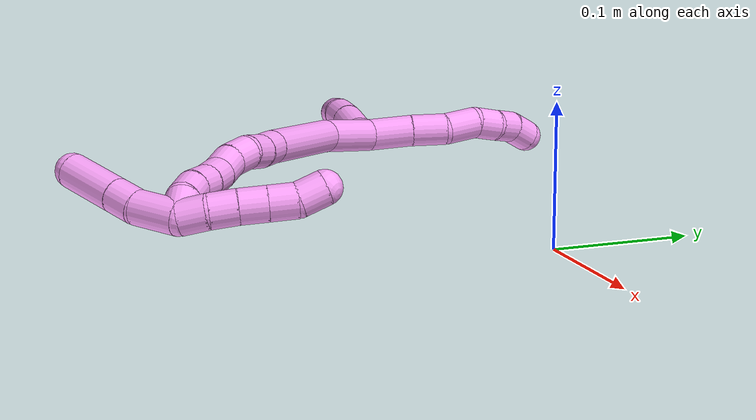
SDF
<sdf version="1.7">
 <world name="default">
  <model name="4">
   <static>0</static>
   <link name="4">
    <collision name="collision-cylinder-e_1_2_8">
     <pose>-0.010838 0.007342 -0.011651 -2.57931 -0.666739 1.75139</pose>
     <geometry><cylinder><radius>0.0125</radius><length>0.03505</length></cylinder></geometry>
     <surface>
      <friction><ode><mu>1.16</mu><mu2>1.16</mu2><slip1>0</slip1><slip2>0</slip2></ode></friction>
      <contact><ode><kp>1e+06</kp><kd>1</kd><max_vel>0</max_vel><min_depth>0.001</min_depth></ode></contact>
     </surface>
    </collision>
    <visual name="visual-cylinder-e_1_2_8">
     <pose>-0.010838 0.007342 -0.011651 -2.57931 -0.666739 1.75139</pose>
     <geometry><cylinder><radius>0.0125</radius><length>0.03505</length></cylinder></geometry>
     <material><ambient>1 0.65098 0.996078 1</ambient></material>
    </visual>
    <collision name="collision-cylinder-e_2_8_9">
     <pose>-0.030508 0.01973 -0.032811 -2.65366 -0.68711 1.92576</pose>
     <geometry><cylinder><radius>0.0125</radius><length>0.027848</length></cylinder></geometry>
     <surface>
      <friction><ode><mu>1.16</mu><mu2>1.16</mu2><slip1>0</slip1><slip2>0</slip2></ode></friction>
      <contact><ode><kp>1e+06</kp><kd>1</kd><max_vel>0</max_vel><min_depth>0.001</min_depth></ode></contact>
     </surface>
    </collision>
    <visual name="visual-cylinder-e_2_8_9">
     <pose>-0.030508 0.01973 -0.032811 -2.65366 -0.68711 1.92576</pose>
     <geometry><cylinder><radius>0.0125</radius><length>0.027848</length></cylinder></geometry>
     <material><ambient>1 0.65098 0.996078 1</ambient></material>
    </visual>
    <collision name="collision-cylinder-e_3_9_10">
     <pose>-0.049794 0.030886 -0.04799 -2.31895 -0.897705 1.66973</pose>
     <geometry><cylinder><radius>0.0125</radius><length>0.026741</length></cylinder></geometry>
     <surface>
      <friction><ode><mu>1.16</mu><mu2>1.16</mu2><slip1>0</slip1><slip2>0</slip2></ode></friction>
      <contact><ode><kp>1e+06</kp><kd>1</kd><max_vel>0</max_vel><min_depth>0.001</min_depth></ode></contact>
     </surface>
    </collision>
    <visual name="visual-cylinder-e_3_9_10">
     <pose>-0.049794 0.030886 -0.04799 -2.31895 -0.897705 1.66973</pose>
     <geometry><cylinder><radius>0.0125</radius><length>0.026741</length></cylinder></geometry>
     <material><ambient>1 0.65098 0.996078 1</ambient></material>
    </visual>
    <collision name="collision-cylinder-e_4_10_11">
     <pose>-0.069284 0.038405 -0.057836 -2.81602 -1.11696 2.62751</pose>
     <geometry><cylinder><radius>0.0125</radius><length>0.020107</length></cylinder></geometry>
     <surface>
      <friction><ode><mu>1.16</mu><mu2>1.16</mu2><slip1>0</slip1><slip2>0</slip2></ode></friction>
      <contact><ode><kp>1e+06</kp><kd>1</kd><max_vel>0</max_vel><min_depth>0.001</min_depth></ode></contact>
     </surface>
    </collision>
    <visual name="visual-cylinder-e_4_10_11">
     <pose>-0.069284 0.038405 -0.057836 -2.81602 -1.11696 2.62751</pose>
     <geometry><cylinder><radius>0.0125</radius><length>0.020107</length></cylinder></geometry>
     <material><ambient>1 0.65098 0.996078 1</ambient></material>
    </visual>
    <collision name="collision-cylinder-e_5_11_12">
     <pose>-0.088154 0.040927 -0.063823 -2.59086 -1.35801 2.46805</pose>
     <geometry><cylinder><radius>0.0125</radius><length>0.020123</length></cylinder></geometry>
     <surface>
      <friction><ode><mu>1.16</mu><mu2>1.16</mu2><slip1>0</slip1><slip2>0</slip2></ode></friction>
      <contact><ode><kp>1e+06</kp><kd>1</kd><max_vel>0</max_vel><min_depth>0.001</min_depth></ode></contact>
     </surface>
    </collision>
    <visual name="visual-cylinder-e_5_11_12">
     <pose>-0.088154 0.040927 -0.063823 -2.59086 -1.35801 2.46805</pose>
     <geometry><cylinder><radius>0.0125</radius><length>0.020123</length></cylinder></geometry>
     <material><ambient>1 0.65098 0.996078 1</ambient></material>
    </visual>
    <collision name="collision-cylinder-e_6_12_6">
     <pose>-0.107404 0.040379 -0.068784 2.65663 -1.20921 -2.45403</pose>
     <geometry><cylinder><radius>0.0125</radius><length>0.020132</length></cylinder></geometry>
     <surface>
      <friction><ode><mu>1.16</mu><mu2>1.16</mu2><slip1>0</slip1><slip2>0</slip2></ode></friction>
      <contact><ode><kp>1e+06</kp><kd>1</kd><max_vel>0</max_vel><min_depth>0.001</min_depth></ode></contact>
     </surface>
    </collision>
    <visual name="visual-cylinder-e_6_12_6">
     <pose>-0.107404 0.040379 -0.068784 2.65663 -1.20921 -2.45403</pose>
     <geometry><cylinder><radius>0.0125</radius><length>0.020132</length></cylinder></geometry>
     <material><ambient>1 0.65098 0.996078 1</ambient></material>
    </visual>
    <collision name="collision-cylinder-e_1_2_13">
     <pose>-0.00867 -0.001653 0.010082 0.162487 -0.703714 -0.059768</pose>
     <geometry><cylinder><radius>0.0125</radius><length>0.026799</length></cylinder></geometry>
     <surface>
      <friction><ode><mu>1.16</mu><mu2>1.16</mu2><slip1>0</slip1><slip2>0</slip2></ode></friction>
      <contact><ode><kp>1e+06</kp><kd>1</kd><max_vel>0</max_vel><min_depth>0.001</min_depth></ode></contact>
     </surface>
    </collision>
    <visual name="visual-cylinder-e_1_2_13">
     <pose>-0.00867 -0.001653 0.010082 0.162487 -0.703714 -0.059768</pose>
     <geometry><cylinder><radius>0.0125</radius><length>0.026799</length></cylinder></geometry>
     <material><ambient>1 0.65098 0.996078 1</ambient></material>
    </visual>
    <collision name="collision-cylinder-e_2_13_14">
     <pose>-0.025828 -0.000994 0.032774 -0.181308 -0.58479 0.054714</pose>
     <geometry><cylinder><radius>0.0125</radius><length>0.03075</length></cylinder></geometry>
     <surface>
      <friction><ode><mu>1.16</mu><mu2>1.16</mu2><slip1>0</slip1><slip2>0</slip2></ode></friction>
      <contact><ode><kp>1e+06</kp><kd>1</kd><max_vel>0</max_vel><min_depth>0.001</min_depth></ode></contact>
     </surface>
    </collision>
    <visual name="visual-cylinder-e_2_13_14">
     <pose>-0.025828 -0.000994 0.032774 -0.181308 -0.58479 0.054714</pose>
     <geometry><cylinder><radius>0.0125</radius><length>0.03075</length></cylinder></geometry>
     <material><ambient>1 0.65098 0.996078 1</ambient></material>
    </visual>
    <collision name="collision-cylinder-e_3_14_15">
     <pose>-0.039938 0.001867 0.053976 -0.06384 -0.578509 0.019005</pose>
     <geometry><cylinder><radius>0.0125</radius><length>0.020566</length></cylinder></geometry>
     <surface>
      <friction><ode><mu>1.16</mu><mu2>1.16</mu2><slip1>0</slip1><slip2>0</slip2></ode></friction>
      <contact><ode><kp>1e+06</kp><kd>1</kd><max_vel>0</max_vel><min_depth>0.001</min_depth></ode></contact>
     </surface>
    </collision>
    <visual name="visual-cylinder-e_3_14_15">
     <pose>-0.039938 0.001867 0.053976 -0.06384 -0.578509 0.019005</pose>
     <geometry><cylinder><radius>0.0125</radius><length>0.020566</length></cylinder></geometry>
     <material><ambient>1 0.65098 0.996078 1</ambient></material>
    </visual>
    <collision name="collision-cylinder-e_4_15_5">
     <pose>-0.053697 0.001203 0.069784 0.166619 -0.838371 -0.074383</pose>
     <geometry><cylinder><radius>0.0125</radius><length>0.021885</length></cylinder></geometry>
     <surface>
      <friction><ode><mu>1.16</mu><mu2>1.16</mu2><slip1>0</slip1><slip2>0</slip2></ode></friction>
      <contact><ode><kp>1e+06</kp><kd>1</kd><max_vel>0</max_vel><min_depth>0.001</min_depth></ode></contact>
     </surface>
    </collision>
    <visual name="visual-cylinder-e_4_15_5">
     <pose>-0.053697 0.001203 0.069784 0.166619 -0.838371 -0.074383</pose>
     <geometry><cylinder><radius>0.0125</radius><length>0.021885</length></cylinder></geometry>
     <material><ambient>1 0.65098 0.996078 1</ambient></material>
    </visual>
    <collision name="collision-cylinder-e_1_2_16">
     <pose>0.02594 -0.004186 0.002189 1.08893 1.39064 0.935585</pose>
     <geometry><cylinder><radius>0.0125</radius><length>0.052734</length></cylinder></geometry>
     <surface>
      <friction><ode><mu>1.16</mu><mu2>1.16</mu2><slip1>0</slip1><slip2>0</slip2></ode></friction>
      <contact><ode><kp>1e+06</kp><kd>1</kd><max_vel>0</max_vel><min_depth>0.001</min_depth></ode></contact>
     </surface>
    </collision>
    <visual name="visual-cylinder-e_1_2_16">
     <pose>0.02594 -0.004186 0.002189 1.08893 1.39064 0.935585</pose>
     <geometry><cylinder><radius>0.0125</radius><length>0.052734</length></cylinder></geometry>
     <material><ambient>1 0.65098 0.996078 1</ambient></material>
    </visual>
    <collision name="collision-cylinder-e_2_16_17">
     <pose>0.093291 -0.015139 -0.002276 2.34792 1.34552 2.17318</pose>
     <geometry><cylinder><radius>0.0125</radius><length>0.084969</length></cylinder></geometry>
     <surface>
      <friction><ode><mu>1.16</mu><mu2>1.16</mu2><slip1>0</slip1><slip2>0</slip2></ode></friction>
      <contact><ode><kp>1e+06</kp><kd>1</kd><max_vel>0</max_vel><min_depth>0.001</min_depth></ode></contact>
     </surface>
    </collision>
    <visual name="visual-cylinder-e_2_16_17">
     <pose>0.093291 -0.015139 -0.002276 2.34792 1.34552 2.17318</pose>
     <geometry><cylinder><radius>0.0125</radius><length>0.084969</length></cylinder></geometry>
     <material><ambient>1 0.65098 0.996078 1</ambient></material>
    </visual>
    <collision name="collision-cylinder-e_3_17_18">
     <pose>0.144867 -0.023654 -0.011824 2.59776 1.24958 2.40374</pose>
     <geometry><cylinder><radius>0.0125</radius><length>0.021426</length></cylinder></geometry>
     <surface>
      <friction><ode><mu>1.16</mu><mu2>1.16</mu2><slip1>0</slip1><slip2>0</slip2></ode></friction>
      <contact><ode><kp>1e+06</kp><kd>1</kd><max_vel>0</max_vel><min_depth>0.001</min_depth></ode></contact>
     </surface>
    </collision>
    <visual name="visual-cylinder-e_3_17_18">
     <pose>0.144867 -0.023654 -0.011824 2.59776 1.24958 2.40374</pose>
     <geometry><cylinder><radius>0.0125</radius><length>0.021426</length></cylinder></geometry>
     <material><ambient>1 0.65098 0.996078 1</ambient></material>
    </visual>
    <collision name="collision-cylinder-e_4_18_19">
     <pose>0.165274 -0.026249 -0.016524 2.70383 1.37858 2.61433</pose>
     <geometry><cylinder><radius>0.0125</radius><length>0.020869</length></cylinder></geometry>
     <surface>
      <friction><ode><mu>1.16</mu><mu2>1.16</mu2><slip1>0</slip1><slip2>0</slip2></ode></friction>
      <contact><ode><kp>1e+06</kp><kd>1</kd><max_vel>0</max_vel><min_depth>0.001</min_depth></ode></contact>
     </surface>
    </collision>
    <visual name="visual-cylinder-e_4_18_19">
     <pose>0.165274 -0.026249 -0.016524 2.70383 1.37858 2.61433</pose>
     <geometry><cylinder><radius>0.0125</radius><length>0.020869</length></cylinder></geometry>
     <material><ambient>1 0.65098 0.996078 1</ambient></material>
    </visual>
    <collision name="collision-cylinder-e_5_19_20">
     <pose>0.184645 -0.031124 -0.018996 1.73475 1.15013 1.30503</pose>
     <geometry><cylinder><radius>0.0125</radius><length>0.020001</length></cylinder></geometry>
     <surface>
      <friction><ode><mu>1.16</mu><mu2>1.16</mu2><slip1>0</slip1><slip2>0</slip2></ode></friction>
      <contact><ode><kp>1e+06</kp><kd>1</kd><max_vel>0</max_vel><min_depth>0.001</min_depth></ode></contact>
     </surface>
    </collision>
    <visual name="visual-cylinder-e_5_19_20">
     <pose>0.184645 -0.031124 -0.018996 1.73475 1.15013 1.30503</pose>
     <geometry><cylinder><radius>0.0125</radius><length>0.020001</length></cylinder></geometry>
     <material><ambient>1 0.65098 0.996078 1</ambient></material>
    </visual>
    <collision name="collision-cylinder-e_6_20_21">
     <pose>0.202081 -0.039593 -0.023023 2.21862 0.980256 1.64109</pose>
     <geometry><cylinder><radius>0.0125</radius><length>0.020003</length></cylinder></geometry>
     <surface>
      <friction><ode><mu>1.16</mu><mu2>1.16</mu2><slip1>0</slip1><slip2>0</slip2></ode></friction>
      <contact><ode><kp>1e+06</kp><kd>1</kd><max_vel>0</max_vel><min_depth>0.001</min_depth></ode></contact>
     </surface>
    </collision>
    <visual name="visual-cylinder-e_6_20_21">
     <pose>0.202081 -0.039593 -0.023023 2.21862 0.980256 1.64109</pose>
     <geometry><cylinder><radius>0.0125</radius><length>0.020003</length></cylinder></geometry>
     <material><ambient>1 0.65098 0.996078 1</ambient></material>
    </visual>
    <collision name="collision-cylinder-e_7_21_22">
     <pose>0.219502 -0.046773 -0.029455 2.4133 1.14662 2.07505</pose>
     <geometry><cylinder><radius>0.0125</radius><length>0.02</length></cylinder></geometry>
     <surface>
      <friction><ode><mu>1.16</mu><mu2>1.16</mu2><slip1>0</slip1><slip2>0</slip2></ode></friction>
      <contact><ode><kp>1e+06</kp><kd>1</kd><max_vel>0</max_vel><min_depth>0.001</min_depth></ode></contact>
     </surface>
    </collision>
    <visual name="visual-cylinder-e_7_21_22">
     <pose>0.219502 -0.046773 -0.029455 2.4133 1.14662 2.07505</pose>
     <geometry><cylinder><radius>0.0125</radius><length>0.02</length></cylinder></geometry>
     <material><ambient>1 0.65098 0.996078 1</ambient></material>
    </visual>
    <collision name="collision-cylinder-e_8_22_23">
     <pose>0.238124 -0.051629 -0.034788 2.38922 1.25591 2.14501</pose>
     <geometry><cylinder><radius>0.0125</radius><length>0.02</length></cylinder></geometry>
     <surface>
      <friction><ode><mu>1.16</mu><mu2>1.16</mu2><slip1>0</slip1><slip2>0</slip2></ode></friction>
      <contact><ode><kp>1e+06</kp><kd>1</kd><max_vel>0</max_vel><min_depth>0.001</min_depth></ode></contact>
     </surface>
    </collision>
    <visual name="visual-cylinder-e_8_22_23">
     <pose>0.238124 -0.051629 -0.034788 2.38922 1.25591 2.14501</pose>
     <geometry><cylinder><radius>0.0125</radius><length>0.02</length></cylinder></geometry>
     <material><ambient>1 0.65098 0.996078 1</ambient></material>
    </visual>
    <collision name="collision-cylinder-e_9_23_24">
     <pose>0.256079 -0.057047 -0.041262 2.47683 1.00599 2.02096</pose>
     <geometry><cylinder><radius>0.0125</radius><length>0.02</length></cylinder></geometry>
     <surface>
      <friction><ode><mu>1.16</mu><mu2>1.16</mu2><slip1>0</slip1><slip2>0</slip2></ode></friction>
      <contact><ode><kp>1e+06</kp><kd>1</kd><max_vel>0</max_vel><min_depth>0.001</min_depth></ode></contact>
     </surface>
    </collision>
    <visual name="visual-cylinder-e_9_23_24">
     <pose>0.256079 -0.057047 -0.041262 2.47683 1.00599 2.02096</pose>
     <geometry><cylinder><radius>0.0125</radius><length>0.02</length></cylinder></geometry>
     <material><ambient>1 0.65098 0.996078 1</ambient></material>
    </visual>
    <collision name="collision-cylinder-e_10_24_1">
     <pose>0.270913 -0.065488 -0.051201 2.41016 0.692838 1.51175</pose>
     <geometry><cylinder><radius>0.0125</radius><length>0.02</length></cylinder></geometry>
     <surface>
      <friction><ode><mu>1.16</mu><mu2>1.16</mu2><slip1>0</slip1><slip2>0</slip2></ode></friction>
      <contact><ode><kp>1e+06</kp><kd>1</kd><max_vel>0</max_vel><min_depth>0.001</min_depth></ode></contact>
     </surface>
    </collision>
    <visual name="visual-cylinder-e_10_24_1">
     <pose>0.270913 -0.065488 -0.051201 2.41016 0.692838 1.51175</pose>
     <geometry><cylinder><radius>0.0125</radius><length>0.02</length></cylinder></geometry>
     <material><ambient>1 0.65098 0.996078 1</ambient></material>
    </visual>
    <collision name="collision-cylinder-e_1_1_25">
     <pose>0.279163 -0.073277 -0.040299 0.158007 0.110187 0.008732</pose>
     <geometry><cylinder><radius>0.0125</radius><length>0.033881</length></cylinder></geometry>
     <surface>
      <friction><ode><mu>1.16</mu><mu2>1.16</mu2><slip1>0</slip1><slip2>0</slip2></ode></friction>
      <contact><ode><kp>1e+06</kp><kd>1</kd><max_vel>0</max_vel><min_depth>0.001</min_depth></ode></contact>
     </surface>
    </collision>
    <visual name="visual-cylinder-e_1_1_25">
     <pose>0.279163 -0.073277 -0.040299 0.158007 0.110187 0.008732</pose>
     <geometry><cylinder><radius>0.0125</radius><length>0.033881</length></cylinder></geometry>
     <material><ambient>1 0.65098 0.996078 1</ambient></material>
    </visual>
    <collision name="collision-cylinder-e_2_25_26">
     <pose>0.280653 -0.07554 -0.013293 -0.037216 -0.035965 0.000669</pose>
     <geometry><cylinder><radius>0.0125</radius><length>0.020785</length></cylinder></geometry>
     <surface>
      <friction><ode><mu>1.16</mu><mu2>1.16</mu2><slip1>0</slip1><slip2>0</slip2></ode></friction>
      <contact><ode><kp>1e+06</kp><kd>1</kd><max_vel>0</max_vel><min_depth>0.001</min_depth></ode></contact>
     </surface>
    </collision>
    <visual name="visual-cylinder-e_2_25_26">
     <pose>0.280653 -0.07554 -0.013293 -0.037216 -0.035965 0.000669</pose>
     <geometry><cylinder><radius>0.0125</radius><length>0.020785</length></cylinder></geometry>
     <material><ambient>1 0.65098 0.996078 1</ambient></material>
    </visual>
    <collision name="collision-cylinder-e_3_26_4">
     <pose>0.278904 -0.074417 0.019699 -0.032591 -0.060706 0.00099</pose>
     <geometry><cylinder><radius>0.0125</radius><length>0.045334</length></cylinder></geometry>
     <surface>
      <friction><ode><mu>1.16</mu><mu2>1.16</mu2><slip1>0</slip1><slip2>0</slip2></ode></friction>
      <contact><ode><kp>1e+06</kp><kd>1</kd><max_vel>0</max_vel><min_depth>0.001</min_depth></ode></contact>
     </surface>
    </collision>
    <visual name="visual-cylinder-e_3_26_4">
     <pose>0.278904 -0.074417 0.019699 -0.032591 -0.060706 0.00099</pose>
     <geometry><cylinder><radius>0.0125</radius><length>0.045334</length></cylinder></geometry>
     <material><ambient>1 0.65098 0.996078 1</ambient></material>
    </visual>
    <collision name="collision-cylinder-e_1_1_27">
     <pose>0.273267 -0.065233 -0.064318 -2.51102 -0.415177 1.14677</pose>
     <geometry><cylinder><radius>0.0125</radius><length>0.02</length></cylinder></geometry>
     <surface>
      <friction><ode><mu>1.16</mu><mu2>1.16</mu2><slip1>0</slip1><slip2>0</slip2></ode></friction>
      <contact><ode><kp>1e+06</kp><kd>1</kd><max_vel>0</max_vel><min_depth>0.001</min_depth></ode></contact>
     </surface>
    </collision>
    <visual name="visual-cylinder-e_1_1_27">
     <pose>0.273267 -0.065233 -0.064318 -2.51102 -0.415177 1.14677</pose>
     <geometry><cylinder><radius>0.0125</radius><length>0.02</length></cylinder></geometry>
     <material><ambient>1 0.65098 0.996078 1</ambient></material>
    </visual>
    <collision name="collision-cylinder-e_2_27_28">
     <pose>0.263388 -0.055127 -0.078315 -2.52215 -0.624342 1.57921</pose>
     <geometry><cylinder><radius>0.0125</radius><length>0.02</length></cylinder></geometry>
     <surface>
      <friction><ode><mu>1.16</mu><mu2>1.16</mu2><slip1>0</slip1><slip2>0</slip2></ode></friction>
      <contact><ode><kp>1e+06</kp><kd>1</kd><max_vel>0</max_vel><min_depth>0.001</min_depth></ode></contact>
     </surface>
    </collision>
    <visual name="visual-cylinder-e_2_27_28">
     <pose>0.263388 -0.055127 -0.078315 -2.52215 -0.624342 1.57921</pose>
     <geometry><cylinder><radius>0.0125</radius><length>0.02</length></cylinder></geometry>
     <material><ambient>1 0.65098 0.996078 1</ambient></material>
    </visual>
    <collision name="collision-cylinder-e_3_28_29">
     <pose>0.251503 -0.046217 -0.091695 -2.58669 -0.648432 1.73559</pose>
     <geometry><cylinder><radius>0.0125</radius><length>0.02</length></cylinder></geometry>
     <surface>
      <friction><ode><mu>1.16</mu><mu2>1.16</mu2><slip1>0</slip1><slip2>0</slip2></ode></friction>
      <contact><ode><kp>1e+06</kp><kd>1</kd><max_vel>0</max_vel><min_depth>0.001</min_depth></ode></contact>
     </surface>
    </collision>
    <visual name="visual-cylinder-e_3_28_29">
     <pose>0.251503 -0.046217 -0.091695 -2.58669 -0.648432 1.73559</pose>
     <geometry><cylinder><radius>0.0125</radius><length>0.02</length></cylinder></geometry>
     <material><ambient>1 0.65098 0.996078 1</ambient></material>
    </visual>
    <collision name="collision-cylinder-e_4_29_30">
     <pose>0.239424 -0.037781 -0.10522 -2.5811 -0.648464 1.72523</pose>
     <geometry><cylinder><radius>0.0125</radius><length>0.02</length></cylinder></geometry>
     <surface>
      <friction><ode><mu>1.16</mu><mu2>1.16</mu2><slip1>0</slip1><slip2>0</slip2></ode></friction>
      <contact><ode><kp>1e+06</kp><kd>1</kd><max_vel>0</max_vel><min_depth>0.001</min_depth></ode></contact>
     </surface>
    </collision>
    <visual name="visual-cylinder-e_4_29_30">
     <pose>0.239424 -0.037781 -0.10522 -2.5811 -0.648464 1.72523</pose>
     <geometry><cylinder><radius>0.0125</radius><length>0.02</length></cylinder></geometry>
     <material><ambient>1 0.65098 0.996078 1</ambient></material>
    </visual>
    <collision name="collision-cylinder-e_5_30_3">
     <pose>0.227571 -0.02679 -0.116508 -2.1623 -0.620338 1.08292</pose>
     <geometry><cylinder><radius>0.0125</radius><length>0.02</length></cylinder></geometry>
     <surface>
      <friction><ode><mu>1.16</mu><mu2>1.16</mu2><slip1>0</slip1><slip2>0</slip2></ode></friction>
      <contact><ode><kp>1e+06</kp><kd>1</kd><max_vel>0</max_vel><min_depth>0.001</min_depth></ode></contact>
     </surface>
    </collision>
    <visual name="visual-cylinder-e_5_30_3">
     <pose>0.227571 -0.02679 -0.116508 -2.1623 -0.620338 1.08292</pose>
     <geometry><cylinder><radius>0.0125</radius><length>0.02</length></cylinder></geometry>
     <material><ambient>1 0.65098 0.996078 1</ambient></material>
    </visual>
    <collision name="collision-sphere-3">
     <pose>0.221758 -0.020035 -0.121045 0 -0 0</pose>
     <geometry><sphere><radius>0.0125</radius></sphere></geometry>
     <surface>
      <friction><ode><mu>1.16</mu><mu2>1.16</mu2><slip1>0</slip1><slip2>0</slip2></ode></friction>
      <contact><ode><kp>1e+06</kp><kd>1</kd><max_vel>0</max_vel><min_depth>0.001</min_depth></ode></contact>
     </surface>
    </collision>
    <visual name="visual-sphere-3">
     <pose>0.221758 -0.020035 -0.121045 0 -0 0</pose>
     <geometry><sphere><radius>0.0125</radius></sphere></geometry>
     <material><ambient>1 0.65098 0.996078 1</ambient></material>
    </visual>
    <collision name="collision-sphere-30">
     <pose>0.233384 -0.033544 -0.111971 0 -0 0</pose>
     <geometry><sphere><radius>0.0125</radius></sphere></geometry>
     <surface>
      <friction><ode><mu>1.16</mu><mu2>1.16</mu2><slip1>0</slip1><slip2>0</slip2></ode></friction>
      <contact><ode><kp>1e+06</kp><kd>1</kd><max_vel>0</max_vel><min_depth>0.001</min_depth></ode></contact>
     </surface>
    </collision>
    <visual name="visual-sphere-30">
     <pose>0.233384 -0.033544 -0.111971 0 -0 0</pose>
     <geometry><sphere><radius>0.0125</radius></sphere></geometry>
     <material><ambient>1 0.65098 0.996078 1</ambient></material>
    </visual>
    <collision name="collision-sphere-29">
     <pose>0.245464 -0.042018 -0.098469 0 -0 0</pose>
     <geometry><sphere><radius>0.0125</radius></sphere></geometry>
     <surface>
      <friction><ode><mu>1.16</mu><mu2>1.16</mu2><slip1>0</slip1><slip2>0</slip2></ode></friction>
      <contact><ode><kp>1e+06</kp><kd>1</kd><max_vel>0</max_vel><min_depth>0.001</min_depth></ode></contact>
     </surface>
    </collision>
    <visual name="visual-sphere-29">
     <pose>0.245464 -0.042018 -0.098469 0 -0 0</pose>
     <geometry><sphere><radius>0.0125</radius></sphere></geometry>
     <material><ambient>1 0.65098 0.996078 1</ambient></material>
    </visual>
    <collision name="collision-sphere-28">
     <pose>0.257542 -0.050417 -0.084921 0 -0 0</pose>
     <geometry><sphere><radius>0.0125</radius></sphere></geometry>
     <surface>
      <friction><ode><mu>1.16</mu><mu2>1.16</mu2><slip1>0</slip1><slip2>0</slip2></ode></friction>
      <contact><ode><kp>1e+06</kp><kd>1</kd><max_vel>0</max_vel><min_depth>0.001</min_depth></ode></contact>
     </surface>
    </collision>
    <visual name="visual-sphere-28">
     <pose>0.257542 -0.050417 -0.084921 0 -0 0</pose>
     <geometry><sphere><radius>0.0125</radius></sphere></geometry>
     <material><ambient>1 0.65098 0.996078 1</ambient></material>
    </visual>
    <collision name="collision-sphere-27">
     <pose>0.269234 -0.059838 -0.071709 0 -0 0</pose>
     <geometry><sphere><radius>0.0125</radius></sphere></geometry>
     <surface>
      <friction><ode><mu>1.16</mu><mu2>1.16</mu2><slip1>0</slip1><slip2>0</slip2></ode></friction>
      <contact><ode><kp>1e+06</kp><kd>1</kd><max_vel>0</max_vel><min_depth>0.001</min_depth></ode></contact>
     </surface>
    </collision>
    <visual name="visual-sphere-27">
     <pose>0.269234 -0.059838 -0.071709 0 -0 0</pose>
     <geometry><sphere><radius>0.0125</radius></sphere></geometry>
     <material><ambient>1 0.65098 0.996078 1</ambient></material>
    </visual>
    <collision name="collision-sphere-4">
     <pose>0.277528 -0.073679 0.042313 0 -0 0</pose>
     <geometry><sphere><radius>0.0125</radius></sphere></geometry>
     <surface>
      <friction><ode><mu>1.16</mu><mu2>1.16</mu2><slip1>0</slip1><slip2>0</slip2></ode></friction>
      <contact><ode><kp>1e+06</kp><kd>1</kd><max_vel>0</max_vel><min_depth>0.001</min_depth></ode></contact>
     </surface>
    </collision>
    <visual name="visual-sphere-4">
     <pose>0.277528 -0.073679 0.042313 0 -0 0</pose>
     <geometry><sphere><radius>0.0125</radius></sphere></geometry>
     <material><ambient>1 0.65098 0.996078 1</ambient></material>
    </visual>
    <collision name="collision-sphere-26">
     <pose>0.280279 -0.075154 -0.002914 0 -0 0</pose>
     <geometry><sphere><radius>0.0125</radius></sphere></geometry>
     <surface>
      <friction><ode><mu>1.16</mu><mu2>1.16</mu2><slip1>0</slip1><slip2>0</slip2></ode></friction>
      <contact><ode><kp>1e+06</kp><kd>1</kd><max_vel>0</max_vel><min_depth>0.001</min_depth></ode></contact>
     </surface>
    </collision>
    <visual name="visual-sphere-26">
     <pose>0.280279 -0.075154 -0.002914 0 -0 0</pose>
     <geometry><sphere><radius>0.0125</radius></sphere></geometry>
     <material><ambient>1 0.65098 0.996078 1</ambient></material>
    </visual>
    <collision name="collision-sphere-25">
     <pose>0.281026 -0.075927 -0.023671 0 -0 0</pose>
     <geometry><sphere><radius>0.0125</radius></sphere></geometry>
     <surface>
      <friction><ode><mu>1.16</mu><mu2>1.16</mu2><slip1>0</slip1><slip2>0</slip2></ode></friction>
      <contact><ode><kp>1e+06</kp><kd>1</kd><max_vel>0</max_vel><min_depth>0.001</min_depth></ode></contact>
     </surface>
    </collision>
    <visual name="visual-sphere-25">
     <pose>0.281026 -0.075927 -0.023671 0 -0 0</pose>
     <geometry><sphere><radius>0.0125</radius></sphere></geometry>
     <material><ambient>1 0.65098 0.996078 1</ambient></material>
    </visual>
    <collision name="collision-sphere-1">
     <pose>0.277301 -0.070628 -0.056927 0 -0 0</pose>
     <geometry><sphere><radius>0.0125</radius></sphere></geometry>
     <surface>
      <friction><ode><mu>1.16</mu><mu2>1.16</mu2><slip1>0</slip1><slip2>0</slip2></ode></friction>
      <contact><ode><kp>1e+06</kp><kd>1</kd><max_vel>0</max_vel><min_depth>0.001</min_depth></ode></contact>
     </surface>
    </collision>
    <visual name="visual-sphere-1">
     <pose>0.277301 -0.070628 -0.056927 0 -0 0</pose>
     <geometry><sphere><radius>0.0125</radius></sphere></geometry>
     <material><ambient>1 0.65098 0.996078 1</ambient></material>
    </visual>
    <collision name="collision-sphere-24">
     <pose>0.264526 -0.060349 -0.045475 0 -0 0</pose>
     <geometry><sphere><radius>0.0125</radius></sphere></geometry>
     <surface>
      <friction><ode><mu>1.16</mu><mu2>1.16</mu2><slip1>0</slip1><slip2>0</slip2></ode></friction>
      <contact><ode><kp>1e+06</kp><kd>1</kd><max_vel>0</max_vel><min_depth>0.001</min_depth></ode></contact>
     </surface>
    </collision>
    <visual name="visual-sphere-24">
     <pose>0.264526 -0.060349 -0.045475 0 -0 0</pose>
     <geometry><sphere><radius>0.0125</radius></sphere></geometry>
     <material><ambient>1 0.65098 0.996078 1</ambient></material>
    </visual>
    <collision name="collision-sphere-23">
     <pose>0.247632 -0.053745 -0.037049 0 -0 0</pose>
     <geometry><sphere><radius>0.0125</radius></sphere></geometry>
     <surface>
      <friction><ode><mu>1.16</mu><mu2>1.16</mu2><slip1>0</slip1><slip2>0</slip2></ode></friction>
      <contact><ode><kp>1e+06</kp><kd>1</kd><max_vel>0</max_vel><min_depth>0.001</min_depth></ode></contact>
     </surface>
    </collision>
    <visual name="visual-sphere-23">
     <pose>0.247632 -0.053745 -0.037049 0 -0 0</pose>
     <geometry><sphere><radius>0.0125</radius></sphere></geometry>
     <material><ambient>1 0.65098 0.996078 1</ambient></material>
    </visual>
    <collision name="collision-sphere-22">
     <pose>0.228616 -0.049512 -0.032527 0 -0 0</pose>
     <geometry><sphere><radius>0.0125</radius></sphere></geometry>
     <surface>
      <friction><ode><mu>1.16</mu><mu2>1.16</mu2><slip1>0</slip1><slip2>0</slip2></ode></friction>
      <contact><ode><kp>1e+06</kp><kd>1</kd><max_vel>0</max_vel><min_depth>0.001</min_depth></ode></contact>
     </surface>
    </collision>
    <visual name="visual-sphere-22">
     <pose>0.228616 -0.049512 -0.032527 0 -0 0</pose>
     <geometry><sphere><radius>0.0125</radius></sphere></geometry>
     <material><ambient>1 0.65098 0.996078 1</ambient></material>
    </visual>
    <collision name="collision-sphere-21">
     <pose>0.210388 -0.044034 -0.026384 0 -0 0</pose>
     <geometry><sphere><radius>0.0125</radius></sphere></geometry>
     <surface>
      <friction><ode><mu>1.16</mu><mu2>1.16</mu2><slip1>0</slip1><slip2>0</slip2></ode></friction>
      <contact><ode><kp>1e+06</kp><kd>1</kd><max_vel>0</max_vel><min_depth>0.001</min_depth></ode></contact>
     </surface>
    </collision>
    <visual name="visual-sphere-21">
     <pose>0.210388 -0.044034 -0.026384 0 -0 0</pose>
     <geometry><sphere><radius>0.0125</radius></sphere></geometry>
     <material><ambient>1 0.65098 0.996078 1</ambient></material>
    </visual>
    <collision name="collision-sphere-12">
     <pose>-0.097989 0.042039 -0.065633 0 -0 0</pose>
     <geometry><sphere><radius>0.0125</radius></sphere></geometry>
     <surface>
      <friction><ode><mu>1.16</mu><mu2>1.16</mu2><slip1>0</slip1><slip2>0</slip2></ode></friction>
      <contact><ode><kp>1e+06</kp><kd>1</kd><max_vel>0</max_vel><min_depth>0.001</min_depth></ode></contact>
     </surface>
    </collision>
    <visual name="visual-sphere-12">
     <pose>-0.097989 0.042039 -0.065633 0 -0 0</pose>
     <geometry><sphere><radius>0.0125</radius></sphere></geometry>
     <material><ambient>1 0.65098 0.996078 1</ambient></material>
    </visual>
    <collision name="collision-sphere-11">
     <pose>-0.07832 0.039815 -0.062012 0 -0 0</pose>
     <geometry><sphere><radius>0.0125</radius></sphere></geometry>
     <surface>
      <friction><ode><mu>1.16</mu><mu2>1.16</mu2><slip1>0</slip1><slip2>0</slip2></ode></friction>
      <contact><ode><kp>1e+06</kp><kd>1</kd><max_vel>0</max_vel><min_depth>0.001</min_depth></ode></contact>
     </surface>
    </collision>
    <visual name="visual-sphere-11">
     <pose>-0.07832 0.039815 -0.062012 0 -0 0</pose>
     <geometry><sphere><radius>0.0125</radius></sphere></geometry>
     <material><ambient>1 0.65098 0.996078 1</ambient></material>
    </visual>
    <collision name="collision-sphere-10">
     <pose>-0.060248 0.036995 -0.05366 0 -0 0</pose>
     <geometry><sphere><radius>0.0125</radius></sphere></geometry>
     <surface>
      <friction><ode><mu>1.16</mu><mu2>1.16</mu2><slip1>0</slip1><slip2>0</slip2></ode></friction>
      <contact><ode><kp>1e+06</kp><kd>1</kd><max_vel>0</max_vel><min_depth>0.001</min_depth></ode></contact>
     </surface>
    </collision>
    <visual name="visual-sphere-10">
     <pose>-0.060248 0.036995 -0.05366 0 -0 0</pose>
     <geometry><sphere><radius>0.0125</radius></sphere></geometry>
     <material><ambient>1 0.65098 0.996078 1</ambient></material>
    </visual>
    <collision name="collision-sphere-9">
     <pose>-0.03934 0.024777 -0.042319 0 -0 0</pose>
     <geometry><sphere><radius>0.0125</radius></sphere></geometry>
     <surface>
      <friction><ode><mu>1.16</mu><mu2>1.16</mu2><slip1>0</slip1><slip2>0</slip2></ode></friction>
      <contact><ode><kp>1e+06</kp><kd>1</kd><max_vel>0</max_vel><min_depth>0.001</min_depth></ode></contact>
     </surface>
    </collision>
    <visual name="visual-sphere-9">
     <pose>-0.03934 0.024777 -0.042319 0 -0 0</pose>
     <geometry><sphere><radius>0.0125</radius></sphere></geometry>
     <material><ambient>1 0.65098 0.996078 1</ambient></material>
    </visual>
    <collision name="collision-sphere-2">
     <geometry><sphere><radius>0.0125</radius></sphere></geometry>
     <surface>
      <friction><ode><mu>1.16</mu><mu2>1.16</mu2><slip1>0</slip1><slip2>0</slip2></ode></friction>
      <contact><ode><kp>1e+06</kp><kd>1</kd><max_vel>0</max_vel><min_depth>0.001</min_depth></ode></contact>
     </surface>
    </collision>
    <visual name="visual-sphere-2">
     <geometry><sphere><radius>0.0125</radius></sphere></geometry>
     <material><ambient>1 0.65098 0.996078 1</ambient></material>
    </visual>
    <collision name="collision-sphere-19">
     <pose>0.175516 -0.027094 -0.01833 0 -0 0</pose>
     <geometry><sphere><radius>0.0125</radius></sphere></geometry>
     <surface>
      <friction><ode><mu>1.16</mu><mu2>1.16</mu2><slip1>0</slip1><slip2>0</slip2></ode></friction>
      <contact><ode><kp>1e+06</kp><kd>1</kd><max_vel>0</max_vel><min_depth>0.001</min_depth></ode></contact>
     </surface>
    </collision>
    <visual name="visual-sphere-19">
     <pose>0.175516 -0.027094 -0.01833 0 -0 0</pose>
     <geometry><sphere><radius>0.0125</radius></sphere></geometry>
     <material><ambient>1 0.65098 0.996078 1</ambient></material>
    </visual>
    <collision name="collision-sphere-8">
     <pose>-0.021676 0.014684 -0.023303 0 -0 0</pose>
     <geometry><sphere><radius>0.0125</radius></sphere></geometry>
     <surface>
      <friction><ode><mu>1.16</mu><mu2>1.16</mu2><slip1>0</slip1><slip2>0</slip2></ode></friction>
      <contact><ode><kp>1e+06</kp><kd>1</kd><max_vel>0</max_vel><min_depth>0.001</min_depth></ode></contact>
     </surface>
    </collision>
    <visual name="visual-sphere-8">
     <pose>-0.021676 0.014684 -0.023303 0 -0 0</pose>
     <geometry><sphere><radius>0.0125</radius></sphere></geometry>
     <material><ambient>1 0.65098 0.996078 1</ambient></material>
    </visual>
    <collision name="collision-sphere-6">
     <pose>-0.116819 0.038718 -0.071934 0 -0 0</pose>
     <geometry><sphere><radius>0.0125</radius></sphere></geometry>
     <surface>
      <friction><ode><mu>1.16</mu><mu2>1.16</mu2><slip1>0</slip1><slip2>0</slip2></ode></friction>
      <contact><ode><kp>1e+06</kp><kd>1</kd><max_vel>0</max_vel><min_depth>0.001</min_depth></ode></contact>
     </surface>
    </collision>
    <visual name="visual-sphere-6">
     <pose>-0.116819 0.038718 -0.071934 0 -0 0</pose>
     <geometry><sphere><radius>0.0125</radius></sphere></geometry>
     <material><ambient>1 0.65098 0.996078 1</ambient></material>
    </visual>
    <collision name="collision-sphere-13">
     <pose>-0.01734 -0.003305 0.020164 0 -0 0</pose>
     <geometry><sphere><radius>0.0125</radius></sphere></geometry>
     <surface>
      <friction><ode><mu>1.16</mu><mu2>1.16</mu2><slip1>0</slip1><slip2>0</slip2></ode></friction>
      <contact><ode><kp>1e+06</kp><kd>1</kd><max_vel>0</max_vel><min_depth>0.001</min_depth></ode></contact>
     </surface>
    </collision>
    <visual name="visual-sphere-13">
     <pose>-0.01734 -0.003305 0.020164 0 -0 0</pose>
     <geometry><sphere><radius>0.0125</radius></sphere></geometry>
     <material><ambient>1 0.65098 0.996078 1</ambient></material>
    </visual>
    <collision name="collision-sphere-14">
     <pose>-0.034315 0.001318 0.045384 0 -0 0</pose>
     <geometry><sphere><radius>0.0125</radius></sphere></geometry>
     <surface>
      <friction><ode><mu>1.16</mu><mu2>1.16</mu2><slip1>0</slip1><slip2>0</slip2></ode></friction>
      <contact><ode><kp>1e+06</kp><kd>1</kd><max_vel>0</max_vel><min_depth>0.001</min_depth></ode></contact>
     </surface>
    </collision>
    <visual name="visual-sphere-14">
     <pose>-0.034315 0.001318 0.045384 0 -0 0</pose>
     <geometry><sphere><radius>0.0125</radius></sphere></geometry>
     <material><ambient>1 0.65098 0.996078 1</ambient></material>
    </visual>
    <collision name="collision-sphere-15">
     <pose>-0.04556 0.002416 0.062568 0 -0 0</pose>
     <geometry><sphere><radius>0.0125</radius></sphere></geometry>
     <surface>
      <friction><ode><mu>1.16</mu><mu2>1.16</mu2><slip1>0</slip1><slip2>0</slip2></ode></friction>
      <contact><ode><kp>1e+06</kp><kd>1</kd><max_vel>0</max_vel><min_depth>0.001</min_depth></ode></contact>
     </surface>
    </collision>
    <visual name="visual-sphere-15">
     <pose>-0.04556 0.002416 0.062568 0 -0 0</pose>
     <geometry><sphere><radius>0.0125</radius></sphere></geometry>
     <material><ambient>1 0.65098 0.996078 1</ambient></material>
    </visual>
    <collision name="collision-sphere-5">
     <pose>-0.061833 -1.1e-05 0.076999 0 -0 0</pose>
     <geometry><sphere><radius>0.0125</radius></sphere></geometry>
     <surface>
      <friction><ode><mu>1.16</mu><mu2>1.16</mu2><slip1>0</slip1><slip2>0</slip2></ode></friction>
      <contact><ode><kp>1e+06</kp><kd>1</kd><max_vel>0</max_vel><min_depth>0.001</min_depth></ode></contact>
     </surface>
    </collision>
    <visual name="visual-sphere-5">
     <pose>-0.061833 -1.1e-05 0.076999 0 -0 0</pose>
     <geometry><sphere><radius>0.0125</radius></sphere></geometry>
     <material><ambient>1 0.65098 0.996078 1</ambient></material>
    </visual>
    <collision name="collision-sphere-16">
     <pose>0.05188 -0.008373 0.004379 0 -0 0</pose>
     <geometry><sphere><radius>0.0125</radius></sphere></geometry>
     <surface>
      <friction><ode><mu>1.16</mu><mu2>1.16</mu2><slip1>0</slip1><slip2>0</slip2></ode></friction>
      <contact><ode><kp>1e+06</kp><kd>1</kd><max_vel>0</max_vel><min_depth>0.001</min_depth></ode></contact>
     </surface>
    </collision>
    <visual name="visual-sphere-16">
     <pose>0.05188 -0.008373 0.004379 0 -0 0</pose>
     <geometry><sphere><radius>0.0125</radius></sphere></geometry>
     <material><ambient>1 0.65098 0.996078 1</ambient></material>
    </visual>
    <collision name="collision-sphere-17">
     <pose>0.134702 -0.021904 -0.00893 0 -0 0</pose>
     <geometry><sphere><radius>0.0125</radius></sphere></geometry>
     <surface>
      <friction><ode><mu>1.16</mu><mu2>1.16</mu2><slip1>0</slip1><slip2>0</slip2></ode></friction>
      <contact><ode><kp>1e+06</kp><kd>1</kd><max_vel>0</max_vel><min_depth>0.001</min_depth></ode></contact>
     </surface>
    </collision>
    <visual name="visual-sphere-17">
     <pose>0.134702 -0.021904 -0.00893 0 -0 0</pose>
     <geometry><sphere><radius>0.0125</radius></sphere></geometry>
     <material><ambient>1 0.65098 0.996078 1</ambient></material>
    </visual>
    <collision name="collision-sphere-18">
     <pose>0.155032 -0.025404 -0.014719 0 -0 0</pose>
     <geometry><sphere><radius>0.0125</radius></sphere></geometry>
     <surface>
      <friction><ode><mu>1.16</mu><mu2>1.16</mu2><slip1>0</slip1><slip2>0</slip2></ode></friction>
      <contact><ode><kp>1e+06</kp><kd>1</kd><max_vel>0</max_vel><min_depth>0.001</min_depth></ode></contact>
     </surface>
    </collision>
    <visual name="visual-sphere-18">
     <pose>0.155032 -0.025404 -0.014719 0 -0 0</pose>
     <geometry><sphere><radius>0.0125</radius></sphere></geometry>
     <material><ambient>1 0.65098 0.996078 1</ambient></material>
    </visual>
    <collision name="collision-sphere-20">
     <pose>0.193773 -0.035153 -0.019663 0 -0 0</pose>
     <geometry><sphere><radius>0.0125</radius></sphere></geometry>
     <surface>
      <friction><ode><mu>1.16</mu><mu2>1.16</mu2><slip1>0</slip1><slip2>0</slip2></ode></friction>
      <contact><ode><kp>1e+06</kp><kd>1</kd><max_vel>0</max_vel><min_depth>0.001</min_depth></ode></contact>
     </surface>
    </collision>
    <visual name="visual-sphere-20">
     <pose>0.193773 -0.035153 -0.019663 0 -0 0</pose>
     <geometry><sphere><radius>0.0125</radius></sphere></geometry>
     <material><ambient>1 0.65098 0.996078 1</ambient></material>
    </visual>
    <inertial>
     <pose>0.113867 -0.021884 -0.022723 0 -0 0</pose>
     <mass>0.75</mass>
     <inertia>
      <ixx>4.8e-05</ixx>
      <ixy>0</ixy>
      <ixz>0</ixz>
      <iyy>0.000145</iyy>
      <iyz>0</iyz>
      <izz>-5.1e-05</izz>
     </inertia>
    </inertial>
   </link>
   <pose>-0.288104 -0.025438 0.023723 1.33968 -0.282759 -0.93378</pose>
  </model>
 </world>
</sdf>
